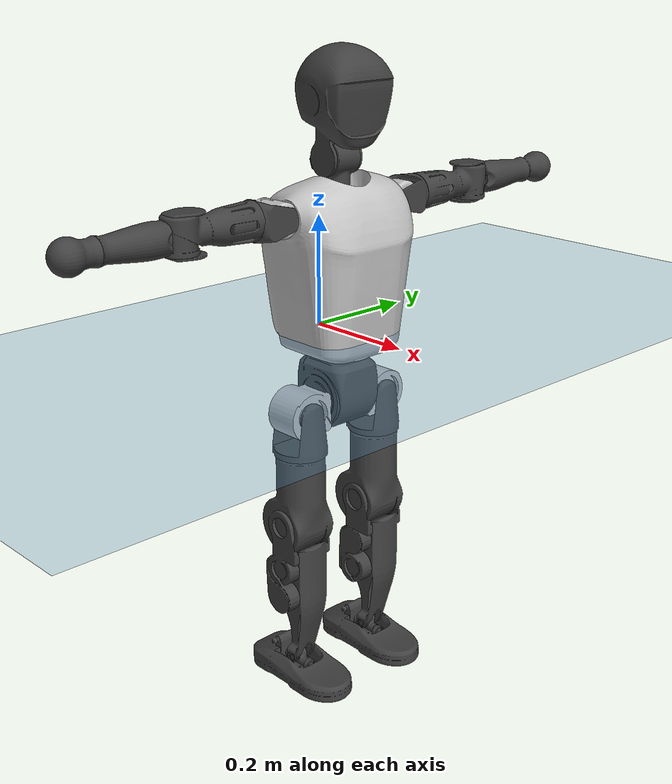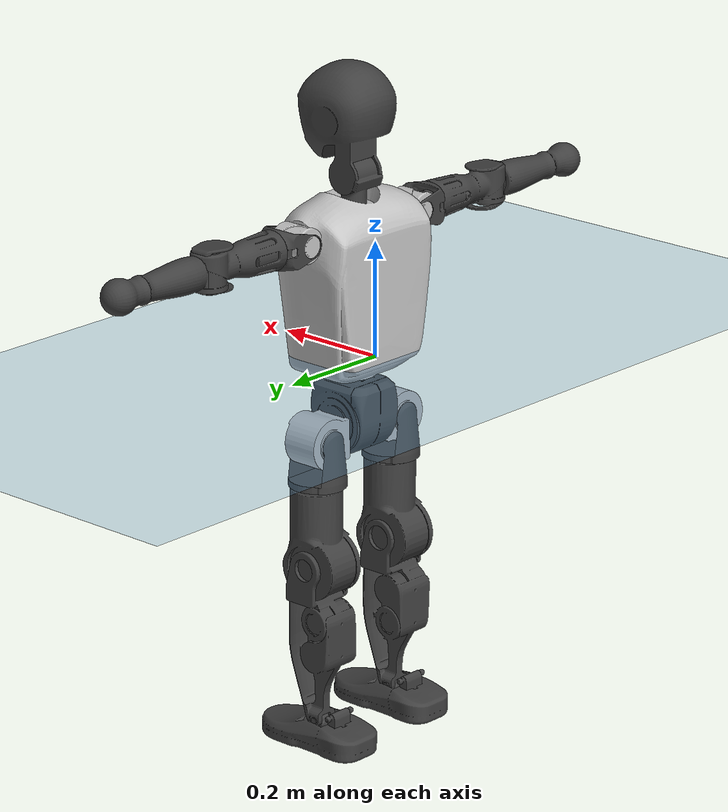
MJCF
<mujoco model="T1">
  <compiler angle="radian" assetdir="assets" balanceinertia="true" inertiafromgeom="false"/>

  <option timestep="0.005" density="1.2" viscosity="2e-05"/>

  <size nkey="1"/>

  <visual>
    <quality shadowsize="8192"/>
    <map shadowclip="0.5"/>
  </visual>

  <default>
    <default class="/">
      <joint armature="0.01" damping="0.01" frictionloss="0.1"/>
      <geom contype="0" conaffinity="0" group="1" solref="-1000 -80"/>
      <site size="0.01 0.005 0.005" group="5"/>
      <general forcelimited="true" biastype="affine" gainprm="25" biasprm="0 -25 -0.6"/>
      <default class="t1">
        <geom rgba="0.25 0.25 0.25 1"/>
        <default class="visual">
          <geom type="mesh" group="2"/>
        </default>
        <default class="collision">
          <geom group="3"/>
        </default>
        <default class="foot">
          <geom size="0.1115 0.05 0.015" type="box" condim="6" group="4" priority="1" solimp="0.015 1 0.015"/>
        </default>
        <default class="reward_collision_sphere">
          <geom group="5" rgba="1 0 0 1"/>
        </default>
      </default>
    </default>
  </default>

  <asset>
    <texture type="skybox" colorspace="auto" name="//unnamed_texture_0" builtin="gradient" rgb1="0.95 0.95 0.95" rgb2="0.95 0.95 0.95" width="100" height="600"/>
    <texture type="2d" colorspace="auto" name="texplane" builtin="checker" rgb1="0.345 0.575 0.748" rgb2="0.345 0.575 0.748" markrgb="1 1 1" width="512" height="512"/>
    <material name="MatPlane" class="/" texture="texplane" texuniform="true" texrepeat="2 2" specular="0.9"/>
    <mesh name="Trunk" class="/" file="Trunk.stl"/>
    <mesh name="H1" class="/" file="H1.stl"/>
    <mesh name="H2" class="/" file="H2.stl"/>
    <mesh name="AL1" class="/" file="AL1.stl"/>
    <mesh name="AL2" class="/" file="AL2.stl"/>
    <mesh name="AL3" class="/" file="AL3.stl"/>
    <mesh name="left_hand_link" class="/" file="left_hand_link.stl"/>
    <mesh name="AR1" class="/" file="AR1.stl"/>
    <mesh name="AR2" class="/" file="AR2.stl"/>
    <mesh name="AR3" class="/" file="AR3.stl"/>
    <mesh name="right_hand_link" class="/" file="right_hand_link.stl"/>
    <mesh name="Waist" class="/" file="Waist.stl"/>
    <mesh name="Hip_Pitch_Left" class="/" file="Hip_Pitch_Left.stl"/>
    <mesh name="Hip_Roll_Left" class="/" file="Hip_Roll_Left.stl"/>
    <mesh name="Hip_Yaw_Left" class="/" file="Hip_Yaw_Left.stl"/>
    <mesh name="Shank_Left" class="/" file="Shank_Left.stl"/>
    <mesh name="Ankle_Cross_Left" class="/" file="Ankle_Cross_Left.stl"/>
    <mesh name="left_foot_link" class="/" file="left_foot_link.stl"/>
    <mesh name="Hip_Pitch_Right" class="/" file="Hip_Pitch_Right.stl"/>
    <mesh name="Hip_Roll_Right" class="/" file="Hip_Roll_Right.stl"/>
    <mesh name="Hip_Yaw_Right" class="/" file="Hip_Yaw_Right.stl"/>
    <mesh name="Shank_Right" class="/" file="Shank_Right.stl"/>
    <mesh name="Ankle_Cross_Right" class="/" file="Ankle_Cross_Right.stl"/>
    <mesh name="right_foot_link" class="/" file="right_foot_link.stl"/>
  </asset>

  <worldbody>
    <geom name="floor" class="/" size="100 100 0.125" type="plane" group="0" material="MatPlane"/>
    <light name="toplight_shadow" class="/" pos="0 0 5" dir="0.0990148 0.0990148 -0.990148" type="directional" ambient="0.04 0.04 0.04" diffuse="0.55 0.55 0.55" specular="0.12 0.12 0.12"/>
    <light name="toplight_fill" class="/" pos="0 0 5" dir="0.0990148 0.0990148 -0.990148" type="directional" castshadow="false" ambient="0.04 0.04 0.04" diffuse="0.3 0.3 0.3" specular="0.08 0.08 0.08"/>
    <body name="trunk" childclass="t1" pos="-0.000550868 -8.71292e-05 0.00171699" quat="1 -2.81247e-05 5.10905e-05 2.31534e-05">
      <inertial pos="0.0435249 -0.00107723 0.105914" quat="0.999963 0.000564431 -0.00859661 -0.000750947" mass="7.97851" diaginertia="0.0278133 0.0402577 0.0531061"/>
      <joint name="//unnamed_joint_0" type="free" armature="0" damping="0" frictionloss="0"/>
      <geom name="//unnamed_geom_1" class="visual" rgba="0.76 0.76 0.76 1" mesh="Trunk"/>
      <geom name="//unnamed_geom_2" class="collision" size="0.0667995 0.089066 0.133599" pos="0.0475108 0 0.119978" type="box"/>
      <geom name="//unnamed_geom_3" class="reward_collision_sphere" size="0.102426" pos="0.0475108 0 0.0999814"/>
      <geom name="//unnamed_geom_4" class="reward_collision_sphere" size="0.0133599" pos="0.0475108 0.0748271 0"/>
      <geom name="//unnamed_geom_5" class="reward_collision_sphere" size="0.0133599" pos="0.0475108 -0.0748271 0"/>
      <geom name="//unnamed_geom_6" class="reward_collision_sphere" size="0.0133599" pos="0.0475108 0.0941941 0.179966"/>
      <geom name="//unnamed_geom_7" class="reward_collision_sphere" size="0.0133599" pos="0.0475108 -0.0941941 0.179966"/>
      <site name="imu" pos="0.0127469 -0.0109915 -0.00335344" size="0.0089066"/>
      <camera name="track" pos="0 -1.76064 0" quat="0.707107 0.707107 0 0" mode="trackcom"/>
      <camera name="ego_camera" pos="0.0966053 0 0.419922" quat="-0.5 -0.5 0.5 0.5"/>
      <body name="H1" pos="0.0494282 -0.000845766 0.243262" quat="1 -4.47004e-06 -1.10622e-05 -6.62592e-06">
        <inertial pos="-0.000266476 -0.000610768 0.0581454" quat="0.763625 -0.0131998 -0.00347154 0.645516" mass="0.317521" diaginertia="7.74997e-05 0.000118201 0.000153814"/>
        <joint name="AAHead_yaw" pos="0 0 0" axis="0.00132568 -0.000150283 0.999999" stiffness="0.0101077" range="-1.58401 1.582" armature="0.00854595" damping="0.00488891" frictionloss="0.0936807"/>
        <geom name="//unnamed_geom_8" class="visual" mesh="H1"/>
        <body name="H2" pos="-0.00050847 -0.00251842 0.0617304" quat="1 2.68142e-05 1.7568e-05 -1.38319e-05">
          <inertial pos="0.00794153 0.00316996 0.0992502" quat="0.988915 0.102653 -0.0762623 -0.0754554" mass="0.462813" diaginertia="0.000630723 0.00103678 0.00173918"/>
          <joint name="Head_pitch" pos="0 0 0" axis="-0.00312597 -0.999988 -0.00386558" range="-1.22022 0.368563" armature="0.00798669" damping="0.00340415" frictionloss="0.0889858"/>
          <geom name="//unnamed_geom_9" class="visual" mesh="H2"/>
          <geom name="//unnamed_geom_10" class="collision" size="0.0712528" pos="0.00791847 0 0.10998"/>
          <geom name="//unnamed_geom_11" class="reward_collision_sphere" size="0.0801594" pos="0.0158369 0 0.0999814"/>
        </body>
      </body>
      <body name="AL1" pos="0.0461442 0.0950343 0.218941" quat="1 -0.000251694 0.000368416 0.000126888">
        <inertial pos="-0.00116819 0.0390248 0.00229946" quat="0.50417 0.495865 -0.504339 0.495553" mass="0.378146" diaginertia="0.000427678 0.000681274 0.000289801"/>
        <joint name="Left_Shoulder_Pitch" pos="0 0 0" axis="0.00285387 0.99998 0.00561366" range="-3.35431 1.20196" armature="0.00855525" damping="0.00965242" frictionloss="0.0884412"/>
        <geom name="//unnamed_geom_12" class="visual" rgba="0.76 0.76 0.76 1" mesh="AL1"/>
        <body name="AL2" pos="-8.35607e-05 0.0448482 -0.00124739" quat="0.999999 0.000399675 -0.000947825 0.00095673">
          <inertial pos="0.00219872 0.0329555 -0.0016919" quat="0.487246 0.511397 -0.487571 0.513166" mass="0.120189" diaginertia="0.000127872 0.000192026 0.000183324"/>
          <joint name="Left_Shoulder_Roll" pos="0 0 0" axis="-0.999989 -0.00467999 -0.000458962" range="-1.58967 1.74477" armature="0.0088531" damping="0" frictionloss="0.0930723"/>
          <geom name="//unnamed_geom_13" class="visual" mesh="AL2"/>
          <body name="AL3" pos="0.0014454 0.0562416 0.00121824" quat="0.999999 0.000768389 -0.000636365 0.000591109">
            <inertial pos="-0.000341353 0.0755832 -0.000277462" quat="0.710552 0.703606 -0.00721388 0.00168706" mass="0.742748" diaginertia="0.00409884 0.00701437 0.000640538"/>
            <joint name="Left_Elbow_Pitch" pos="0 0 0" axis="0.00145586 -0.999999 0.000317798" range="-2.26654 2.27138" armature="0.00912748" damping="0.0125175" frictionloss="0.08915"/>
            <geom name="//unnamed_geom_14" class="visual" mesh="AL3"/>
            <geom name="//unnamed_geom_15" class="collision" size="0.0267198 0.0667995" pos="0 0.0440159 0" quat="0.707105 0.707108 0 0" type="cylinder"/>
            <geom name="//unnamed_geom_16" class="reward_collision_sphere" size="0.0320638"/>
            <body name="left_hand_link" pos="0.000121551 0.132447 0.00191479" quat="0.999999 0.00117709 0.000277069 -0.000119727">
              <inertial pos="-0.000427752 0.0969215 -0.00174851" quat="0.708791 0.705327 -0.00602713 -0.00957928" mass="0.223656" diaginertia="0.0024564 0.00417854 0.000208447"/>
              <joint name="Left_Elbow_Yaw" pos="0 0 0" axis="0.0129865 0.0036498 0.999909" range="-2.43897 0.0314615" armature="0.00901073" damping="0.00647025" frictionloss="0.100391"/>
              <geom name="//unnamed_geom_17" class="visual" mesh="left_hand_link"/>
              <geom name="//unnamed_geom_18" class="collision" size="0.0267198 0.0779327" pos="0 0.114441 0" quat="0.707105 0.707108 0 0" type="cylinder"/>
              <geom name="//unnamed_geom_19" class="reward_collision_sphere" size="0.044533"/>
              <geom name="//unnamed_geom_20" class="reward_collision_sphere" size="0.0311731" pos="0 0.0968351 0"/>
              <geom name="//unnamed_geom_21" class="reward_collision_sphere" size="0.0311731" pos="0 0.189269 0"/>
            </body>
          </body>
        </body>
      </body>
      <body name="AR1" pos="0.0430823 -0.0910906 0.218687" quat="1 -0.000211281 0.000591981 0.000201088">
        <inertial pos="-0.000479404 -0.0389225 -0.000354948" quat="0.50491 0.493525 -0.505364 0.496091" mass="0.37217" diaginertia="0.000427016 0.00069001 0.000290085"/>
        <joint name="Right_Shoulder_Pitch" pos="0 0 0" axis="-0.000464255 -0.999999 -0.000955721" stiffness="0.0152405" range="-1.17839 3.31721" armature="0.0087064" damping="0.0179188" frictionloss="0.0889758"/>
        <geom name="//unnamed_geom_22" class="visual" rgba="0.76 0.76 0.76 1" mesh="AR1"/>
        <body name="AR2" pos="-0.00266722 -0.0387367 0.000487799" quat="1 -2.57197e-05 -1.56631e-05 -0.000117387">
          <inertial pos="0.0023302 -0.0341819 -0.000802332" quat="0.512584 0.488658 -0.510608 0.487597" mass="0.111493" diaginertia="0.000120069 0.000175009 0.000176982"/>
          <joint name="Right_Shoulder_Roll" pos="0 0 0" axis="-0.999991 0.000238681 0.00421554" stiffness="0.00583769" range="-1.74005 1.52338" armature="0.00897199" damping="0.00427588" frictionloss="0.078733"/>
          <geom name="//unnamed_geom_23" class="visual" mesh="AR2"/>
          <body name="AR3" pos="-0.000216929 -0.0507418 0.00187799" quat="1 2.37536e-05 -2.38687e-05 -4.10214e-05">
            <inertial pos="-0.000296778 -0.0741081 -0.000651568" quat="0.716716 0.697363 -0.000741614 -0.0018421" mass="0.720265" diaginertia="0.00400111 0.00682562 0.000627059"/>
            <joint name="Right_Elbow_Pitch" pos="0 0 0" axis="0.000539788 1 -0.00069998" stiffness="0.0105472" range="-2.26956 2.27393" armature="0.00913099" damping="0.0101054" frictionloss="0.0999848"/>
            <geom name="//unnamed_geom_24" class="visual" mesh="AR3"/>
            <geom name="//unnamed_geom_25" class="collision" size="0.0267198 0.0667995" pos="0 -0.0440159 0" quat="0.707105 0.707108 0 0" type="cylinder"/>
            <geom name="//unnamed_geom_26" class="reward_collision_sphere" size="0.0320638"/>
            <body name="right_hand_link" pos="-0.00253455 -0.129152 -0.00153252" quat="1 0.000134764 2.1204e-05 4.3158e-05">
              <inertial pos="-0.000992414 -0.0963184 0.00314959" quat="0.698777 0.715327 0.00207929 0.00370211" mass="0.22248" diaginertia="0.00243516 0.00416637 0.000207431"/>
              <joint name="Right_Elbow_Yaw" pos="0 0 0" axis="-0.000155488 -0.000467419 1" stiffness="0.000210552" range="-0.0368559 2.42176" armature="0.0101565" damping="0.00603854" frictionloss="0.0884473"/>
              <geom name="//unnamed_geom_27" class="visual" mesh="right_hand_link"/>
              <geom name="//unnamed_geom_28" class="collision" size="0.0267198 0.0779327" pos="0 -0.114441 0" quat="0.707105 0.707108 0 0" type="cylinder"/>
              <geom name="//unnamed_geom_29" class="reward_collision_sphere" size="0.044533"/>
              <geom name="//unnamed_geom_30" class="reward_collision_sphere" size="0.0311731" pos="0 -0.0968351 0"/>
              <geom name="//unnamed_geom_31" class="reward_collision_sphere" size="0.0311731" pos="0 -0.189269 0"/>
            </body>
          </body>
        </body>
      </body>
      <body name="Waist" pos="0.0496379 -0.00209217 -0.117033" quat="1 3.25188e-05 -2.63007e-05 -3.60723e-05">
        <inertial pos="0.00380903 -0.000425294 0.00719884" quat="0.983674 0.00137748 -0.179951 0.000602864" mass="1.80398" diaginertia="0.00163306 0.00265716 0.00460631"/>
        <joint name="Waist" pos="0 0 0" axis="0.00387926 0.00287519 0.999988" range="-1.51966 1.55868" armature="0.00807379" damping="0.0104222" frictionloss="0.0882919"/>
        <geom name="//unnamed_geom_32" class="visual" mesh="Waist"/>
        <body name="Hip_Pitch_Left" pos="-0.00168674 0.0947148 -0.0004143" quat="0.999999 0.000478966 0.000324602 0.000969552">
          <inertial pos="0.000368583 -0.00413722 -0.0182264" quat="0.975025 0.221512 0.0158916 0.00256097" mass="0.721686" diaginertia="0.000557058 0.00078886 0.00123521"/>
          <joint name="Left_Hip_Pitch" pos="0 0 0" axis="-0.00172497 0.999998 -0.000736398" stiffness="0.00486081" range="-1.7923 1.58921" armature="0.00886411" damping="0.00804696" frictionloss="0.0891197"/>
          <geom name="//unnamed_geom_33" class="visual" rgba="0.76 0.76 0.76 1" mesh="Hip_Pitch_Left"/>
          <body name="Hip_Roll_Left" pos="-0.000161155 0.000186785 -0.0206225" quat="1 2.86864e-06 -1.53507e-06 -0.000837209">
            <inertial pos="0.00158642 0.000171451 -0.0525132" quat="0.707483 -0.00606171 -0.00563187 0.706682" mass="0.273776" diaginertia="0.000540925 0.000782638 0.000502514"/>
            <joint name="Left_Hip_Roll" pos="0 0 0" axis="-0.999999 0.00130306 -0.000210494" range="-1.58883 0.221748" armature="0.00901224" damping="0.00981171" frictionloss="0.0967749"/>
            <geom name="//unnamed_geom_34" class="visual" mesh="Hip_Roll_Left"/>
            <geom name="//unnamed_geom_35" class="reward_collision_sphere" size="0.0489863"/>
            <body name="Hip_Yaw_Left" pos="0.00154555 -0.00113389 -0.0833475" quat="1 0.000225509 -8.44324e-05 0.000117388">
              <inertial pos="-0.00463496 -0.000330512 -0.0898818" quat="0.694602 -0.0457912 -0.027881 0.717394" mass="1.53567" diaginertia="0.00799216 0.0129593 0.00259398"/>
              <joint name="Left_Hip_Yaw" pos="0 0 0" axis="-0.00433436 0.00705305 -0.999966" range="-1.00284 0.997538" armature="0.00901074" damping="0.0165659" frictionloss="0.0887331"/>
              <geom name="//unnamed_geom_36" class="visual" mesh="Hip_Yaw_Left"/>
              <geom name="//unnamed_geom_37" class="collision" size="0.044533 0.0712528" type="cylinder"/>
              <body name="Shank_Left" pos="-0.00995997 0.000493999 -0.134426" quat="1 5.98207e-05 5.42949e-05 -5.32222e-05">
                <inertial pos="-0.00509481 -0.000219698 -0.12375" quat="0.997896 0.00652116 -0.025674 0.0591794" mass="1.21524" diaginertia="0.0108076 0.0185025 0.00186339"/>
                <joint name="Left_Knee_Pitch" pos="0 0 0" axis="-0.00012836 0.999995 0.00306859" range="-0.0155067 2.33228" armature="0.00852994" damping="0.0100701" frictionloss="0.0983712"/>
                <geom name="//unnamed_geom_38" class="visual" mesh="Shank_Left"/>
                <geom name="//unnamed_geom_39" class="collision" size="0.044533 0.0667995" pos="0 0 -0.119978" type="cylinder"/>
                <geom name="//unnamed_geom_40" class="reward_collision_sphere" size="0.0578929"/>
                <body name="Ankle_Cross_Left" pos="-0.000929609 -7.89052e-05 -0.281336" quat="1 -0.000181329 6.82092e-05 0.000117605">
                  <inertial pos="-0.00258121 0.000158999 -0.0106066" quat="0.439749 0.553204 0.552456 0.442017" mass="0.052755" diaginertia="9.53378e-06 1.37711e-05 1.15915e-05"/>
                  <joint name="Left_Ankle_Pitch" pos="0 0 0" axis="0.000647697 0.999999 0.0011781" stiffness="0.0017456" range="-0.920159 0.357822" armature="0.00888296" damping="0.00481554" frictionloss="0.0987842"/>
                  <geom name="//unnamed_geom_41" class="visual" mesh="Ankle_Cross_Left"/>
                  <body name="left_foot_link" pos="0.000783411 7.96028e-05 -0.0152243" quat="1 -0.000381734 7.77865e-05 1.28825e-05">
                    <inertial pos="0.000650601 -0.00234809 -0.00995143" quat="0.00124983 0.620824 -0.00146726 0.783948" mass="0.483912" diaginertia="0.000849066 0.00125596 0.00215193"/>
                    <joint name="Left_Ankle_Roll" pos="0 0 0" axis="-0.999999 0.00156634 0.000602353" range="-0.457977 0.454283" armature="0.00903439" damping="0.0144847" frictionloss="0.0892477"/>
                    <geom name="//unnamed_geom_42" class="visual" mesh="left_foot_link"/>
                    <geom name="left_foot" class="foot" size="0.101419 0.0480252 0.0138201" pos="0.00791847 0 -0.0149972"/>
                    <geom name="//unnamed_geom_44" class="reward_collision_sphere" size="0.0463143" pos="0.00791847 0 -0.0149972"/>
                    <geom name="//unnamed_geom_45" class="reward_collision_sphere" size="0.0267198" pos="0.0752255 -0.0202473 -0.0149972"/>
                    <geom name="//unnamed_geom_46" class="reward_collision_sphere" size="0.0267198" pos="-0.0554293 -0.0202473 -0.0149972"/>
                    <site name="left_foot" class="foot" pos="0.00791847 0 -0.0149972" size="0.0089066"/>
                  </body>
                </body>
              </body>
            </body>
          </body>
        </body>
        <body name="Hip_Pitch_Right" pos="0.0020357 -0.0926265 0.00149378" quat="1 0.000395733 -0.000370894 -0.000155053">
          <inertial pos="0.000280755 0.00558305 -0.0153535" quat="0.971072 -0.238212 0.0164343 -0.00226904" mass="0.711163" diaginertia="0.00055527 0.000761326 0.00125779"/>
          <joint name="Right_Hip_Pitch" pos="0 0 0" axis="0.00683174 -0.999976 -0.00152299" range="-1.56786 1.79458" armature="0.00972869" damping="0.0126774" frictionloss="0.0903849"/>
          <geom name="//unnamed_geom_47" class="visual" rgba="0.76 0.76 0.76 1" mesh="Hip_Pitch_Right"/>
          <body name="Hip_Roll_Right" pos="0.000458929 0.000347418 -0.0195448" quat="0.999999 -1.66857e-06 -0.00108457 0.000909482">
            <inertial pos="0.00383176 -0.000960075 -0.0546592" quat="0.704743 -0.00562906 -0.0141835 0.709298" mass="0.26684" diaginertia="0.000525086 0.000777562 0.000506357"/>
            <joint name="Right_Hip_Roll" pos="0 0 0" axis="-0.999985 -0.00539306 0.00100889" range="-0.208656 1.60728" armature="0.00908277" damping="0.00406437" frictionloss="0.0888984"/>
            <geom name="//unnamed_geom_48" class="visual" mesh="Hip_Roll_Right"/>
            <geom name="//unnamed_geom_49" class="reward_collision_sphere" size="0.0489863"/>
            <body name="Hip_Yaw_Right" pos="0.000790669 -0.00144528 -0.0814339" quat="0.999999 0.00084671 0.00107167 -0.000282022">
              <inertial pos="-0.00448322 0.000346145 -0.0902093" quat="0.713966 -0.0285343 -0.0372378 0.698607" mass="1.56043" diaginertia="0.00848351 0.0142102 0.00266135"/>
              <joint name="Right_Hip_Yaw" pos="0 0 0" axis="0.000113333 9.21978e-05 -1" range="-1.00926 0.956156" armature="0.00903931" damping="0.0128838" frictionloss="0.0787119"/>
              <geom name="//unnamed_geom_50" class="visual" mesh="Hip_Yaw_Right"/>
              <geom name="//unnamed_geom_51" class="collision" size="0.044533 0.0712528" type="cylinder"/>
              <body name="Shank_Right" pos="-0.0129971 0.00055548 -0.134383" quat="0.999999 0.000866838 -7.75505e-05 -0.000581836">
                <inertial pos="-0.00264033 0.00011378 -0.121776" quat="0.999228 -0.000767721 -0.0233721 -0.0315774" mass="1.31185" diaginertia="0.0110182 0.0180752 0.00193424"/>
                <joint name="Right_Knee_Pitch" pos="0 0 0" axis="-0.00335572 -0.999993 0.00176595" range="-2.3172 0.00968782" armature="0.0090961" damping="0.0111499" frictionloss="0.0869511"/>
                <geom name="//unnamed_geom_52" class="visual" mesh="Shank_Right"/>
                <geom name="//unnamed_geom_53" class="collision" size="0.044533 0.0667995" pos="0 0 -0.119978" type="cylinder"/>
                <geom name="//unnamed_geom_54" class="reward_collision_sphere" size="0.0578929"/>
                <body name="Ankle_Cross_Right" pos="0.00142825 0.000365229 -0.281143" quat="0.999999 0.00025867 0.00102281 -0.00042869">
                  <inertial pos="-0.00310167 -0.00024335 -0.00765777" quat="0.44247 0.553249 0.549968 0.442347" mass="0.0493523" diaginertia="8.87463e-06 1.33644e-05 1.11668e-05"/>
                  <joint name="Right_Ankle_Pitch" pos="0 0 0" axis="-0.0136162 -0.999903 0.00307562" range="-0.346186 0.845246" armature="0.00968909" damping="0.00179708" frictionloss="0.0776627"/>
                  <geom name="//unnamed_geom_55" class="visual" mesh="Ankle_Cross_Right"/>
                  <body name="right_foot_link" pos="0.00198878 -0.00178583 -0.0115082" quat="1 -7.19857e-05 -3.46586e-05 -5.30818e-05">
                    <inertial pos="-0.00110543 -0.000857673 -0.0111528" quat="-0.00128805 0.620901 0.00132032 0.783887" mass="0.491808" diaginertia="0.000821841 0.00125007 0.00217499"/>
                    <joint name="Right_Ankle_Roll" pos="0 0 0" axis="-0.999944 0.0077179 -0.00721785" range="-0.387054 0.436029" armature="0.00818689" damping="0.00812353" frictionloss="0.0903555"/>
                    <geom name="//unnamed_geom_56" class="visual" mesh="right_foot_link"/>
                    <geom name="right_foot" class="foot" size="0.0926745 0.0450959 0.013645" pos="0.00791847 0 -0.0149972"/>
                    <geom name="//unnamed_geom_58" class="reward_collision_sphere" size="0.0356264"/>
                    <geom name="//unnamed_geom_59" class="reward_collision_sphere" size="0.0267198" pos="0.00791847 0 -0.0149972"/>
                    <geom name="//unnamed_geom_60" class="reward_collision_sphere" size="0.0267198" pos="0.0752255 0.0202473 -0.0149972"/>
                    <geom name="//unnamed_geom_61" class="reward_collision_sphere" size="0.0267198" pos="-0.0554293 0.0202473 -0.0149972"/>
                    <site name="right_foot" class="foot" pos="0.00791847 0 -0.0149972" size="0.0089066"/>
                  </body>
                </body>
              </body>
            </body>
          </body>
        </body>
      </body>
    </body>
  </worldbody>

  <contact>
    <pair class="/" geom1="floor" geom2="left_foot" name="//unnamed_contact_0"/>
    <pair class="/" geom1="floor" geom2="right_foot" name="//unnamed_contact_1"/>
  </contact>

  <actuator>
    <general name="AAHead_yaw" class="/" joint="AAHead_yaw" forcerange="-6.29673 6.29673" gainprm="23.3197" biasprm="0 -23.3197 -0.512876"/>
    <general name="Head_pitch" class="/" joint="Head_pitch" forcerange="-6.20679 6.20679" gainprm="23.3197" biasprm="0 -23.3197 -0.512876"/>
    <general name="Left_Shoulder_Pitch" class="/" joint="Left_Shoulder_Pitch" forcerange="-15.9164 15.9164" gainprm="23.3197" biasprm="0 -23.3197 -0.512876"/>
    <general name="Left_Shoulder_Roll" class="/" joint="Left_Shoulder_Roll" forcerange="-16.1156 16.1156" gainprm="23.3197" biasprm="0 -23.3197 -0.512876"/>
    <general name="Left_Elbow_Pitch" class="/" joint="Left_Elbow_Pitch" forcerange="-17.2927 17.2927" gainprm="23.3197" biasprm="0 -23.3197 -0.512876"/>
    <general name="Left_Elbow_Yaw" class="/" joint="Left_Elbow_Yaw" forcerange="-16.4814 16.4814" gainprm="23.3197" biasprm="0 -23.3197 -0.512876"/>
    <general name="Right_Shoulder_Pitch" class="/" joint="Right_Shoulder_Pitch" forcerange="-16.4192 16.4192" gainprm="23.3197" biasprm="0 -23.3197 -0.512876"/>
    <general name="Right_Shoulder_Roll" class="/" joint="Right_Shoulder_Roll" forcerange="-15.9948 15.9948" gainprm="23.3197" biasprm="0 -23.3197 -0.512876"/>
    <general name="Right_Elbow_Pitch" class="/" joint="Right_Elbow_Pitch" forcerange="-16.6632 16.6632" gainprm="23.3197" biasprm="0 -23.3197 -0.512876"/>
    <general name="Right_Elbow_Yaw" class="/" joint="Right_Elbow_Yaw" forcerange="-17.1857 17.1857" gainprm="23.3197" biasprm="0 -23.3197 -0.512876"/>
    <general name="Waist" class="/" joint="Waist" forcerange="-26.5973 26.5973" gainprm="23.3197" biasprm="0 -23.3197 -0.512876"/>
    <general name="Left_Hip_Pitch" class="/" joint="Left_Hip_Pitch" forcerange="-36.113 36.113" gainprm="23.3197" biasprm="0 -23.3197 -0.512876"/>
    <general name="Left_Hip_Roll" class="/" joint="Left_Hip_Roll" forcerange="-25.8239 25.8239" gainprm="23.3197" biasprm="0 -23.3197 -0.512876"/>
    <general name="Left_Hip_Yaw" class="/" joint="Left_Hip_Yaw" forcerange="-25.721 25.721" gainprm="23.3197" biasprm="0 -23.3197 -0.512876"/>
    <general name="Left_Knee_Pitch" class="/" joint="Left_Knee_Pitch" forcerange="-57.1677 57.1677" gainprm="23.3197" biasprm="0 -23.3197 -0.512876"/>
    <general name="Left_Ankle_Pitch" class="/" joint="Left_Ankle_Pitch" forcerange="-17.4116 17.4116" gainprm="23.3197" biasprm="0 -23.3197 -0.512876"/>
    <general name="Left_Ankle_Roll" class="/" joint="Left_Ankle_Roll" forcerange="-13.4038 13.4038" gainprm="23.3197" biasprm="0 -23.3197 -0.512876"/>
    <general name="Right_Hip_Pitch" class="/" joint="Right_Hip_Pitch" forcerange="-43.8133 43.8133" gainprm="23.3197" biasprm="0 -23.3197 -0.512876"/>
    <general name="Right_Hip_Roll" class="/" joint="Right_Hip_Roll" forcerange="-25.6895 25.6895" gainprm="23.3197" biasprm="0 -23.3197 -0.512876"/>
    <general name="Right_Hip_Yaw" class="/" joint="Right_Hip_Yaw" forcerange="-25.6938 25.6938" gainprm="23.3197" biasprm="0 -23.3197 -0.512876"/>
    <general name="Right_Knee_Pitch" class="/" joint="Right_Knee_Pitch" forcerange="-54.7138 54.7138" gainprm="23.3197" biasprm="0 -23.3197 -0.512876"/>
    <general name="Right_Ankle_Pitch" class="/" joint="Right_Ankle_Pitch" forcerange="-18.0619 18.0619" gainprm="23.3197" biasprm="0 -23.3197 -0.512876"/>
    <general name="Right_Ankle_Roll" class="/" joint="Right_Ankle_Roll" forcerange="-12.1362 12.1362" gainprm="23.3197" biasprm="0 -23.3197 -0.512876"/>
  </actuator>

  <sensor>
    <gyro site="imu" name="imu_angular_velocity"/>
    <velocimeter site="imu" name="imu_linear_velocity"/>
    <framelinvel objtype="site" objname="left_foot" name="left_foot_global_linear_velocity"/>
    <framelinvel objtype="site" objname="right_foot" name="right_foot_global_linear_velocity"/>
  </sensor>

  <keyframe>
    <key name="home" qpos="0 0 0.6385 1 0 0 0 0 0 0 1.4 0 -0.4 0 -1.4 0 0.4 0 -0.4 0 0 0.8 -0.4 0 0.4 0 0 -0.8 0.4 0"/>
  </keyframe>
</mujoco>
